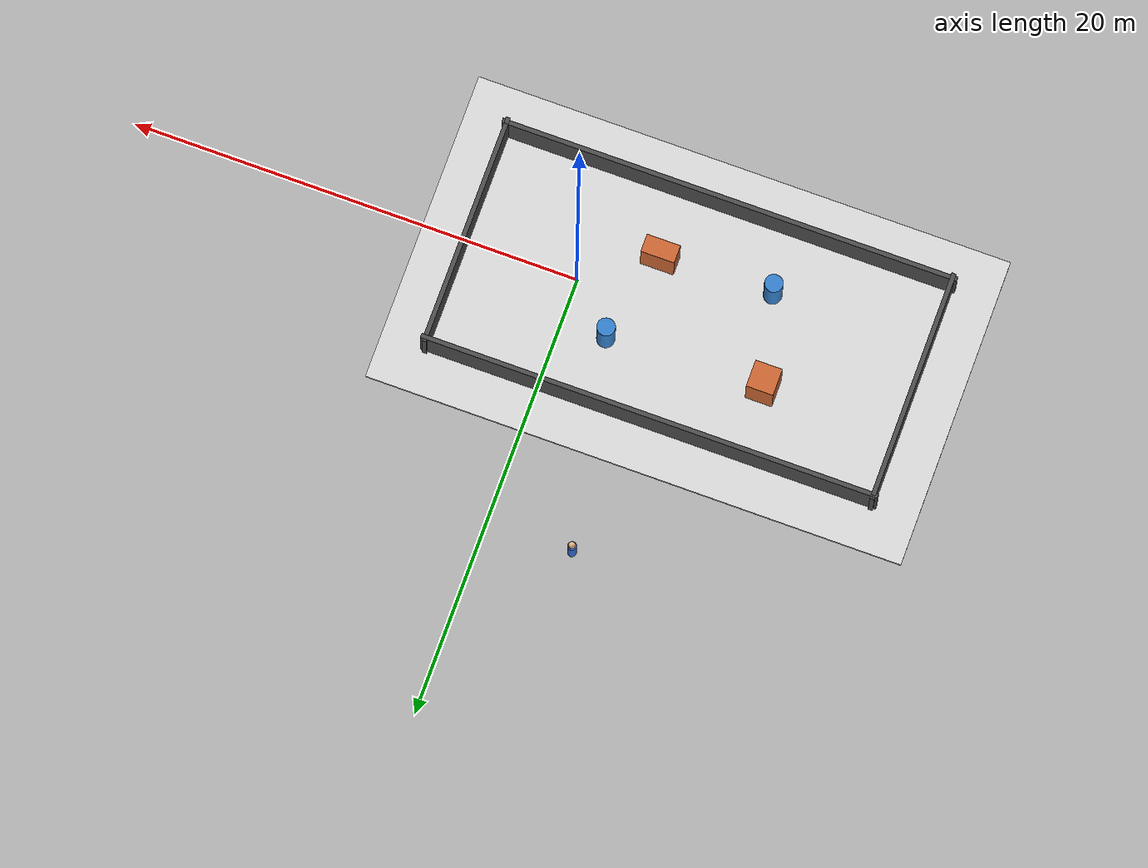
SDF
<sdf version="1.9">
 <world name="arena_dataset">
  <gravity>0 0 -9.81</gravity>
  <plugin filename="gz-sim-physics-system" name="gz::sim::systems::Physics"/>
  <plugin filename="gz-sim-user-commands-system" name="gz::sim::systems::UserCommands"/>
  <plugin filename="gz-sim-scene-broadcaster-system" name="gz::sim::systems::SceneBroadcaster"/>
  <plugin filename="libmulti_human_scenario_system.so" name="custom_corridor::MultiHumanScenarioSystem">
   <human_count>4</human_count>
   <scenario_topic>/multi_human/scenario</scenario_topic>
   <command_topic>/multi_human/command</command_topic>
   <visual_z>1.0</visual_z>
   <proxy_z>0.85</proxy_z>
   <hidden_z>-50.0</hidden_z>
   <animation_name>walk</animation_name>
   <auto_start_on_scenario>false</auto_start_on_scenario>
  </plugin>
  <scene><shadows>false</shadows></scene>
  <physics name="default_physics" type="ode">
   <max_step_size>0.004</max_step_size>
   <real_time_factor>1.0</real_time_factor>
  </physics>
  <plugin filename="gz-sim-sensors-system" name="gz::sim::systems::Sensors">
   <render_engine>ogre2</render_engine>
  </plugin>
  <light type="directional" name="sun">
   <cast_shadows>false</cast_shadows>
   <pose>0 0 10 0 0 0</pose>
   <diffuse>0.8 0.8 0.8 1</diffuse>
   <specular>0.2 0.2 0.2 1</specular>
   <direction>-0.5 0.1 -0.9</direction>
  </light>
  <model name="ground">
   <static>true</static>
   <link name="link">
    <collision name="collision"><geometry><box><size>24.0 14.0 0.1</size></box></geometry></collision>
    <visual name="visual">
     <geometry><box><size>24.0 14.0 0.1</size></box></geometry>
     <material><ambient>0.85 0.85 0.85 1</ambient><diffuse>0.85 0.85 0.85 1</diffuse></material>
    </visual>
   </link>
   <pose>-5.0 0.0 -0.05 0 0 0</pose>
  </model>
  <model name="wall_west">
   <static>true</static>
   <link name="link">
    <collision name="collision"><geometry><box><size>0.2 10.4 2.0</size></box></geometry></collision>
    <visual name="visual">
     <geometry><box><size>0.2 10.4 2.0</size></box></geometry>
     <material><ambient>0.3 0.3 0.3 1</ambient><diffuse>0.3 0.3 0.3 1</diffuse></material>
    </visual>
   </link>
   <pose>-15.0 0.0 1.0 0 0 0</pose>
  </model>
  <model name="wall_east">
   <static>true</static>
   <link name="link">
    <collision name="collision"><geometry><box><size>0.2 10.4 2.0</size></box></geometry></collision>
    <visual name="visual">
     <geometry><box><size>0.2 10.4 2.0</size></box></geometry>
     <material><ambient>0.3 0.3 0.3 1</ambient><diffuse>0.3 0.3 0.3 1</diffuse></material>
    </visual>
   </link>
   <pose>5.0 0.0 1.0 0 0 0</pose>
  </model>
  <model name="wall_south">
   <static>true</static>
   <link name="link">
    <collision name="collision"><geometry><box><size>20.4 0.2 2.0</size></box></geometry></collision>
    <visual name="visual">
     <geometry><box><size>20.4 0.2 2.0</size></box></geometry>
     <material><ambient>0.3 0.3 0.3 1</ambient><diffuse>0.3 0.3 0.3 1</diffuse></material>
    </visual>
   </link>
   <pose>-5.0 -5.0 1.0 0 0 0</pose>
  </model>
  <model name="wall_north">
   <static>true</static>
   <link name="link">
    <collision name="collision"><geometry><box><size>20.4 0.2 2.0</size></box></geometry></collision>
    <visual name="visual">
     <geometry><box><size>20.4 0.2 2.0</size></box></geometry>
     <material><ambient>0.3 0.3 0.3 1</ambient><diffuse>0.3 0.3 0.3 1</diffuse></material>
    </visual>
   </link>
   <pose>-5.0 5.0 1.0 0 0 0</pose>
  </model>
  <model name="static_box_A">
   <static>true</static>
   <link name="link">
    <collision name="collision"><geometry><box><size>1.2 1.2 2.0</size></box></geometry></collision>
    <visual name="visual">
     <geometry><box><size>1.2 1.2 2.0</size></box></geometry>
     <material><ambient>0.8 0.4 0.2 1</ambient><diffuse>0.8 0.4 0.2 1</diffuse></material>
    </visual>
   </link>
   <pose>-9.0 1.8 1.0 0 0 0</pose>
  </model>
  <model name="static_cylinder_B">
   <static>true</static>
   <link name="link">
    <collision name="collision">
     <geometry><cylinder><radius>0.4</radius><length>2.0</length></cylinder></geometry>
    </collision>
    <visual name="visual">
     <geometry><cylinder><radius>0.4</radius><length>2.0</length></cylinder></geometry>
     <material><ambient>0.2 0.5 0.8 1</ambient><diffuse>0.2 0.5 0.8 1</diffuse></material>
    </visual>
   </link>
   <pose>-8.0 -2.2 1.0 0 0 0</pose>
  </model>
  <model name="static_box_C">
   <static>true</static>
   <link name="link">
    <collision name="collision"><geometry><box><size>1.5 0.8 2.0</size></box></geometry></collision>
    <visual name="visual">
     <geometry><box><size>1.5 0.8 2.0</size></box></geometry>
     <material><ambient>0.8 0.4 0.2 1</ambient><diffuse>0.8 0.4 0.2 1</diffuse></material>
    </visual>
   </link>
   <pose>-3.0 -2.0 1.0 0 0 0</pose>
  </model>
  <model name="static_cylinder_D">
   <static>true</static>
   <link name="link">
    <collision name="collision">
     <geometry><cylinder><radius>0.4</radius><length>2.0</length></cylinder></geometry>
    </collision>
    <visual name="visual">
     <geometry><cylinder><radius>0.4</radius><length>2.0</length></cylinder></geometry>
     <material><ambient>0.2 0.5 0.8 1</ambient><diffuse>0.2 0.5 0.8 1</diffuse></material>
    </visual>
   </link>
   <pose>-2.0 2.0 1.0 0 0 0</pose>
  </model>
  <model name="human_01_proxy">
   <pose>0 0 -50 0 0 0</pose>
   <static>false</static>
   <link name="body">
    <gravity>false</gravity>
    <kinematic>true</kinematic>
    <collision name="collision">
     <geometry><cylinder><radius>0.22</radius><length>1.70</length></cylinder></geometry>
    </collision>
    <visual name="body_visual">
     <geometry><cylinder><radius>0.22</radius><length>1.35</length></cylinder></geometry>
     <material><ambient>0.2 0.4 0.8 1</ambient><diffuse>0.2 0.4 0.8 1</diffuse></material>
    </visual>
    <visual name="head_visual">
     <pose>0 0 0.82 0 0 0</pose>
     <geometry><sphere><radius>0.18</radius></sphere></geometry>
     <material><ambient>0.9 0.7 0.5 1</ambient><diffuse>0.9 0.7 0.5 1</diffuse></material>
    </visual>
   </link>
  </model>
  <model name="human_02_proxy">
   <pose>0 0 -50 0 0 0</pose>
   <static>false</static>
   <link name="body">
    <gravity>false</gravity>
    <kinematic>true</kinematic>
    <collision name="collision">
     <geometry><cylinder><radius>0.22</radius><length>1.70</length></cylinder></geometry>
    </collision>
    <visual name="body_visual">
     <geometry><cylinder><radius>0.22</radius><length>1.35</length></cylinder></geometry>
     <material><ambient>0.2 0.4 0.8 1</ambient><diffuse>0.2 0.4 0.8 1</diffuse></material>
    </visual>
    <visual name="head_visual">
     <pose>0 0 0.82 0 0 0</pose>
     <geometry><sphere><radius>0.18</radius></sphere></geometry>
     <material><ambient>0.9 0.7 0.5 1</ambient><diffuse>0.9 0.7 0.5 1</diffuse></material>
    </visual>
   </link>
  </model>
  <model name="human_03_proxy">
   <pose>0 0 -50 0 0 0</pose>
   <static>false</static>
   <link name="body">
    <gravity>false</gravity>
    <kinematic>true</kinematic>
    <collision name="collision">
     <geometry><cylinder><radius>0.22</radius><length>1.70</length></cylinder></geometry>
    </collision>
    <visual name="body_visual">
     <geometry><cylinder><radius>0.22</radius><length>1.35</length></cylinder></geometry>
     <material><ambient>0.2 0.4 0.8 1</ambient><diffuse>0.2 0.4 0.8 1</diffuse></material>
    </visual>
    <visual name="head_visual">
     <pose>0 0 0.82 0 0 0</pose>
     <geometry><sphere><radius>0.18</radius></sphere></geometry>
     <material><ambient>0.9 0.7 0.5 1</ambient><diffuse>0.9 0.7 0.5 1</diffuse></material>
    </visual>
   </link>
  </model>
  <model name="human_04_proxy">
   <pose>0 0 -50 0 0 0</pose>
   <static>false</static>
   <link name="body">
    <gravity>false</gravity>
    <kinematic>true</kinematic>
    <collision name="collision">
     <geometry><cylinder><radius>0.22</radius><length>1.70</length></cylinder></geometry>
    </collision>
    <visual name="body_visual">
     <geometry><cylinder><radius>0.22</radius><length>1.35</length></cylinder></geometry>
     <material><ambient>0.2 0.4 0.8 1</ambient><diffuse>0.2 0.4 0.8 1</diffuse></material>
    </visual>
    <visual name="head_visual">
     <pose>0 0 0.82 0 0 0</pose>
     <geometry><sphere><radius>0.18</radius></sphere></geometry>
     <material><ambient>0.9 0.7 0.5 1</ambient><diffuse>0.9 0.7 0.5 1</diffuse></material>
    </visual>
   </link>
  </model>
 </world>
</sdf>
